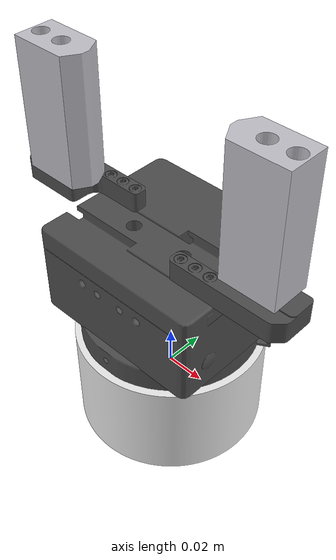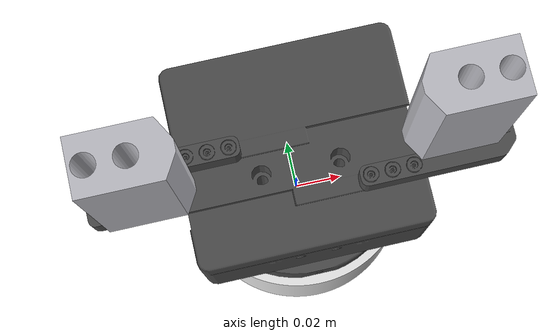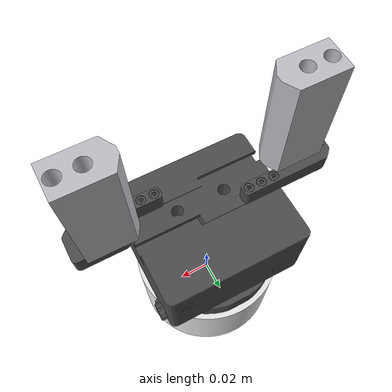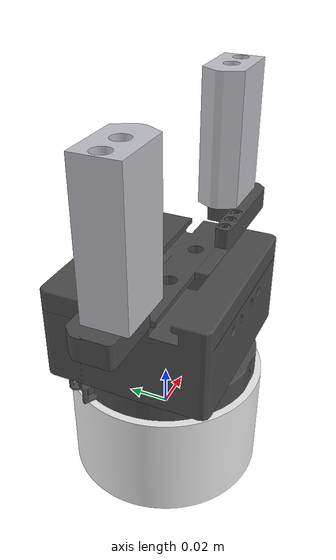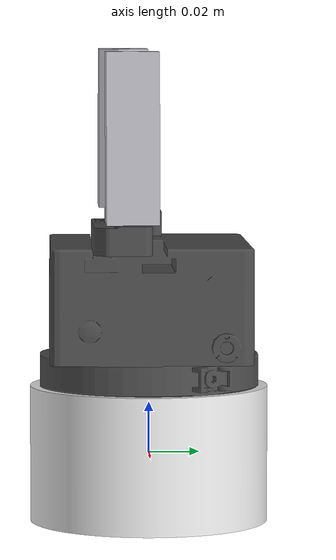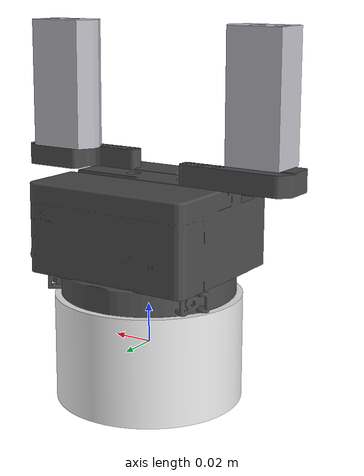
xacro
<?xml version="1.0" ?>

<robot name="hand" xmlns:xacro="http://www.ros.org/wiki/xacro">
    <!-- Ajout des différentes pièces de la pinces / couleurs définies dans le fichier materials.xacro-->
    <link name="cylinder_link">
      <visual>
        <geometry>
          <mesh filename="package://mfja_motoman_hc10/meshes/hand/right/cylinder.stl" scale="1 1 1"/>
        </geometry>
        <material name="white_smoke"/>
      </visual>
      <collision>
        <geometry>
          <mesh filename="package://mfja_motoman_hc10/meshes/hand/right/cylinder.stl" scale="1 1 1"/>
        </geometry>
      </collision>
    </link>
    <link name="end_effector_link">
        <visual>
          <geometry>
            <mesh filename="package://mfja_motoman_hc10/meshes/hand/right/GEH6040IL-03-B(01).stl" scale="0.001 0.001 0.001"/>
          </geometry>
          <material name="dark_gray"/>
        </visual>
        <collision>
          <geometry>
            <mesh filename="package://mfja_motoman_hc10/meshes/hand/right/GEH6040IL-03-B(01).stl" scale="0.001 0.001 0.001"/>
          </geometry>
        </collision>
      </link>
      <link name="mors_link1">
        <visual>
          <geometry>
            <mesh filename="package://mfja_motoman_hc10/meshes/hand/right/UB5006AL.stl" scale="0.001 0.001 0.001"/>
          </geometry>
          <material name="silver"/>
        </visual>
        <collision>
          <geometry>
            <mesh filename="package://mfja_motoman_hc10/meshes/hand/right/UB5006AL.stl" scale="0.001 0.001 0.001"/>
          </geometry>
        </collision>
      </link>
      <link name="mors_link2">
        <visual>
          <geometry>
            <mesh filename="package://mfja_motoman_hc10/meshes/hand/right/UB5006AL.stl" scale="0.001 0.001 0.001"/>
          </geometry>
          <material name="silver"/>
        </visual>
        <collision>
          <geometry>
            <mesh filename="package://mfja_motoman_hc10/meshes/hand/right/UB5006AL.stl" scale="0.001 0.001 0.001"/>
          </geometry>
        </collision>
      </link>
      <link name="adaptater_plate_link">
        <visual>
          <geometry>
            <mesh filename="package://mfja_motoman_hc10/meshes/hand/right/APR000009.stl" scale="0.001 0.001 0.001"/>
          </geometry>
          <material name="dark_gray"/>
        </visual>
        <collision>
          <geometry>
            <mesh filename="package://mfja_motoman_hc10/meshes/hand/right/APR000009.stl" scale="0.001 0.001 0.001"/>
          </geometry>
        </collision>
      </link>
      <link name="adaptater_mors1_link">
        <visual>
          <geometry>
            <mesh filename="package://mfja_motoman_hc10/meshes/hand/right/APGEH6000.stl" scale="0.001 0.001 0.001"/>
          </geometry>
          <material name="dark_gray"/>
        </visual>
        <collision>
          <geometry>
            <mesh filename="package://mfja_motoman_hc10/meshes/hand/right/APGEH6000.stl" scale="0.001 0.001 0.001"/>
          </geometry>
        </collision>
      </link>
      <link name="adaptater_mors2_link">
        <visual>
          <geometry>
            <mesh filename="package://mfja_motoman_hc10/meshes/hand/right/APGEH6000.stl" scale="0.001 0.001 0.001"/>
          </geometry>
          <material name="dark_gray"/>
        </visual>
        <collision>
          <geometry>
            <mesh filename="package://mfja_motoman_hc10/meshes/hand/right/APGEH6000.stl" scale="0.001 0.001 0.001"/>
          </geometry>
        </collision>
      </link>
      <!-- Création des joints  -->
      <joint name="cylinder_adaptater_plate" type="fixed" >
        <origin rpy="-1.5708 0 0" xyz="0 0 0.027" />
        <parent link="cylinder_link" />
        <child link="adaptater_plate_link" />
      </joint>
      <joint name="adaptater_plate_end_effector" type="fixed" >
        <origin rpy="0 0 0" xyz="0 -0.012 0" />
        <parent link="adaptater_plate_link" />
        <child link="end_effector_link" />
      </joint>
      <!-- ce joint doit être de type prismatique -->
      <joint name="end_effector_adaptater_mors1" type="fixed" >
        <origin rpy="3.14 0 0" xyz="-0.079 -0.045 0.006" />
        <parent link="end_effector_link" />
        <child link="adaptater_mors1_link" />
      </joint>
      <!-- ce joint doit être de type prismatique -->
      <joint name="end_effector_adaptater_mors2" type="fixed" >
        <origin rpy="3.14 3.14 0" xyz="0.078 -0.045 -0.023" />
        <parent link="end_effector_link" />
        <child link="adaptater_mors2_link" />
      </joint>
      <joint name="end_effector_mors1" type="fixed" >
        <origin rpy="0 0 0" xyz="0.007 0.011 0.015" />
        <parent link="adaptater_mors1_link" />
        <child link="mors_link1" />
      </joint>
      <joint name="end_effector_mors2" type="fixed" >
        <origin rpy="0 0 0" xyz="0.007 0.011 0.015" />
        <parent link="adaptater_mors2_link" />
        <child link="mors_link2" />
      </joint>
</robot>
